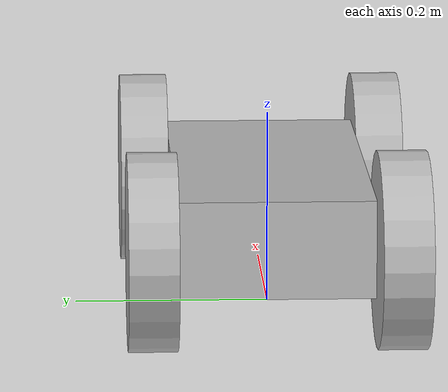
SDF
<?xml version='1.0'?>

<sdf version='1.4'>

<model name="mecanumdrive">

<static>false</static>

    <link name='chassis'>
        <pose>0 0 0.1 0 0 0</pose>

        <collision name='collision'>
            <geometry>
                <box>
                    <size>0.4 0.2 0.1</size>
                </box>
            </geometry>
        </collision>

        <visual name='visual'>
            <pose>0 0 0.0 0 0 0</pose>
            <geometry>
                <box>
                    <size>0.4 0.2 0.1</size>
                </box>
            </geometry>
        </visual>

    </link>

    <link name="wheel1">
        <pose>0.2 0.125 0.1 -1.5707963267949 0 0</pose>

        <collision name="collision">
            <geometry>
                <cylinder>
                    <radius>0.1</radius>
                    <length>0.05</length>
                </cylinder>
            </geometry>

            <surface>
                <friction>
                    <torsional>
                        <coefficient>1.0</coefficient>
                        <ode>
                            <slip>1.0</slip>
                        </ode>
                    </torsional>
                </friction>
            </surface>
        </collision>

        <visual name="visual">
            <geometry>
                <cylinder>
                    <radius>0.1</radius>
                    <length>0.05</length>
                </cylinder>
            </geometry>
        </visual>

        <inertial>
            <mass>0.4</mass>
            <pose>0 0 0 0 0 0</pose>
            <inertia>
                <ixx>0.002708333</ixx>
                <iyy>0.002708333</iyy>
                <izz>0.005</izz>
            </inertia>
        </inertial>

    </link>

    <link name="wheel2">
        <pose>0.2 -0.125 0.1 1.5707963267949 0 0</pose>

        <collision name="collision">
            <geometry>
                <cylinder>
                    <radius>0.1</radius>
                    <length>0.05</length>
                </cylinder>
            </geometry>

            <surface>
                <friction>
                    <torsional>
                        <coefficient>1.0</coefficient>
                        <ode>
                            <slip>1.0</slip>
                        </ode>
                    </torsional>
                </friction>
            </surface>
        </collision>

        <visual name="visual">
            <geometry>
                <cylinder>
                    <radius>0.1</radius>
                    <length>0.05</length>
                </cylinder>
            </geometry>
        </visual>

        <inertial>
            <mass>0.4</mass>
            <pose>0 0 0 0 0 0</pose>
            <inertia>
                <ixx>0.002708333</ixx>
                <iyy>0.002708333</iyy>
                <izz>0.005</izz>
            </inertia>
        </inertial>

    </link>

    <link name="wheel3">
        <pose>-0.2 0.125 0.1 -1.5707963267949 0 0</pose>

        <collision name="collision">
            <geometry>
                <cylinder>
                    <radius>0.1</radius>
                    <length>0.05</length>
                </cylinder>
            </geometry>

            <surface>
                <friction>
                    <torsional>
                        <coefficient>1.0</coefficient>
                        <ode>
                            <slip>1.0</slip>
                        </ode>
                    </torsional>
                </friction>
            </surface>
        </collision>

        <visual name="visual">
            <geometry>
                <cylinder>
                    <radius>0.1</radius>
                    <length>0.05</length>
                </cylinder>
            </geometry>
        </visual>

        <inertial>
            <mass>0.4</mass>
            <pose>0 0 0 0 0 0</pose>
            <inertia>
                <ixx>0.002708333</ixx>
                <iyy>0.002708333</iyy>
                <izz>0.005</izz>
            </inertia>
        </inertial>

    </link>

    <link name="wheel4">
        <pose>-0.2 -0.125 0.1 1.5707963267949 0 0</pose>

        <collision name="collision">
            <geometry>
                <cylinder>
                    <radius>0.1</radius>
                    <length>0.05</length>
                </cylinder>
            </geometry>

            <surface>
                <friction>
                    <torsional>
                        <coefficient>1.0</coefficient>
                        <ode>
                            <slip>1.0</slip>
                        </ode>
                    </torsional>
                </friction>
            </surface>
        </collision>

        <visual name="visual">
            <geometry>
                <cylinder>
                    <radius>0.1</radius>
                    <length>0.05</length>
                </cylinder>
            </geometry>
        </visual>

        <inertial>
            <mass>0.4</mass>
            <pose>0 0 0 0 0 0</pose>
            <inertia>
                <ixx>0.002708333</ixx>
                <iyy>0.002708333</iyy>
                <izz>0.005</izz>
            </inertia>
        </inertial>

    </link>

    <joint type="revolute" name="wheel1_hinge">
        <pose>0 0 -0.025 0 0 0</pose>
        <child>wheel1</child>
        <parent>chassis</parent>
        <axis>
            <xyz>0 1 0</xyz>
        </axis>
    </joint>

    <joint type="revolute" name="wheel2_hinge">
        <pose>0 0 -0.025 0 0 0</pose>
        <child>wheel2</child>
        <parent>chassis</parent>
        <axis>
            <xyz>0 1 0</xyz>
        </axis>
    </joint>

    <joint type="revolute" name="wheel3_hinge">
        <pose>0 0 -0.025 0 0 0</pose>
        <child>wheel3</child>
        <parent>chassis</parent>
        <axis>
            <xyz>0 1 0</xyz>
        </axis>
    </joint>

    <joint type="revolute" name="wheel4_hinge">
        <pose>0 0 -0.025 0 0 0</pose>
        <child>wheel4</child>
        <parent>chassis</parent>
        <axis>
            <xyz>0 1 0</xyz>
        </axis>
    </joint>

    <plugin name="object_controller" filename="libgazebo_ros_planar_move.so">
        <commandTopic>cmd_vel</commandTopic>
        <odometryTopic>odom</odometryTopic>
        <odometryFrame>odom</odometryFrame>
        <odometryRate>50.0</odometryRate>
        <robotBaseFrame>chassis</robotBaseFrame>
    </plugin>

    <plugin name="p3d_base_controller" filename="libgazebo_ros_p3d.so">
        <alwaysOn>true</alwaysOn>
        <updateRate>50.0</updateRate>
        <bodyName>chassis</bodyName>
        <topicName>ground_truth/state</topicName>
        <gaussianNoise>0</gaussianNoise>
        <frameName>world</frameName>
        <xyzOffsets>0 0 0</xyzOffsets>
        <rpyOffsets>0 0 0</rpyOffsets>
    </plugin>

</model>

</sdf>
